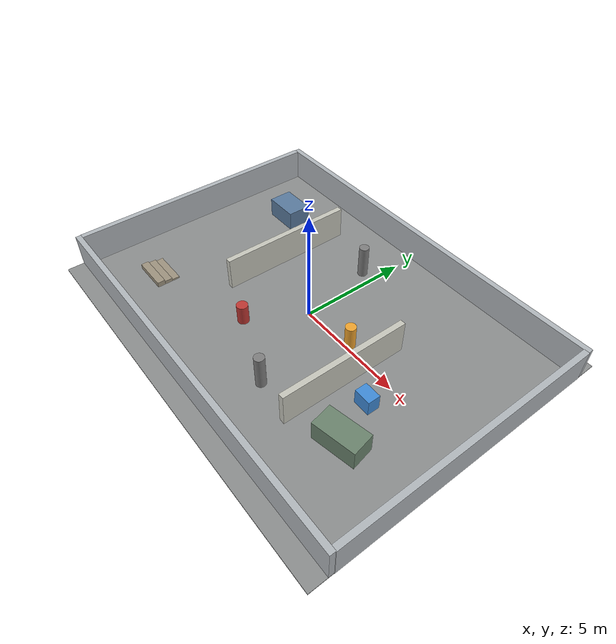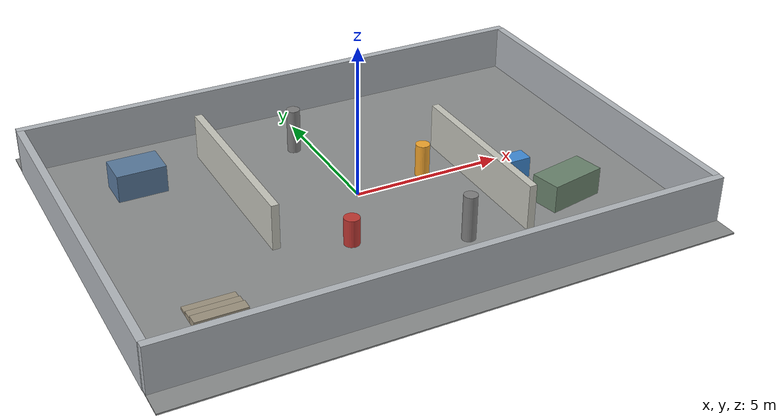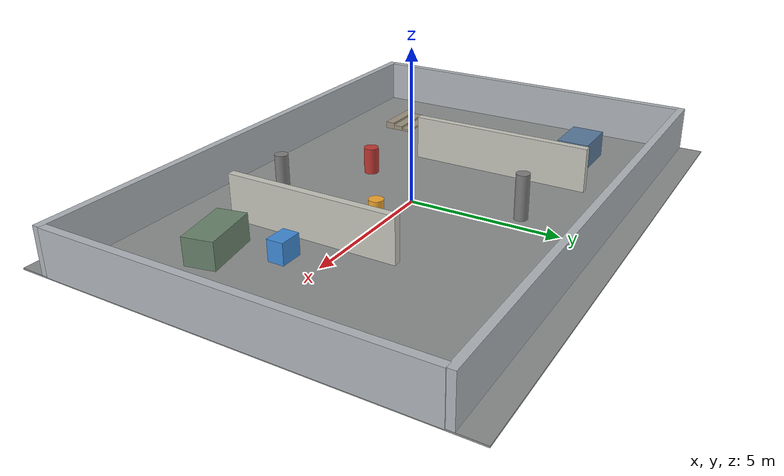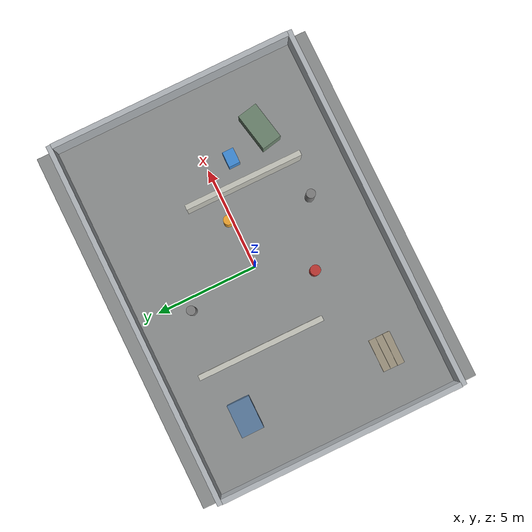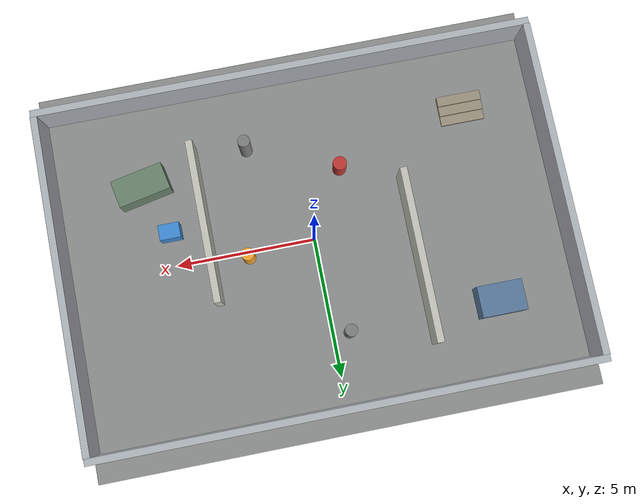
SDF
<?xml version="1.0"?>
<sdf version="1.6">
  <world name="official_bag_reference_factory">
    <!-- ==================== 太阳光源 ==================== -->
    <!-- 引入 Gazebo 标准模型库中的太阳（环境光 + 方向光），保证场景亮度。 -->
    <include>
      <uri>model://sun</uri>
    </include>

    <!-- ==================== ground：地面 ==================== -->
    <!-- 静态地面：18m × 14m × 0.05m 的薄长方体，中心下沉 -0.025m
         使顶面恰好位于 z=0 平面，供机器人行走。 -->
    <model name="ground">
      <static>true</static>
      <link name="ground_link">
        <collision name="collision">
          <geometry>
            <box>
              <size>18 14 0.05</size>
            </box>
          </geometry>
        </collision>
        <visual name="visual">
          <geometry>
            <box>
              <size>18 14 0.05</size>
            </box>
          </geometry>
          <material>
            <ambient>0.55 0.56 0.56 1</ambient>
            <diffuse>0.55 0.56 0.56 1</diffuse>
          </material>
        </visual>
      </link>
      <pose>0 0 -0.025 0 0 0</pose>
    </model>

    <!-- ==================== north_wall：北侧围墙 ==================== -->
    <!-- 静态墙体：位于 y=6.1m 处，尺寸 18m × 0.25m × 1.5m，作为场地北边界。 -->
    <model name="north_wall">
      <static>true</static>
      <pose>0 6.1 0.75 0 0 0</pose>
      <link name="link">
        <collision name="collision"><geometry><box><size>18 0.25 1.5</size></box></geometry></collision>
        <visual name="visual"><geometry><box><size>18 0.25 1.5</size></box></geometry><material><ambient>0.70 0.72 0.74 1</ambient><diffuse>0.70 0.72 0.74 1</diffuse></material></visual>
      </link>
    </model>

    <!-- ==================== south_wall：南侧围墙 ==================== -->
    <!-- 静态墙体：位于 y=-6.1m 处，作为场地南边界。 -->
    <model name="south_wall">
      <static>true</static>
      <pose>0 -6.1 0.75 0 0 0</pose>
      <link name="link">
        <collision name="collision"><geometry><box><size>18 0.25 1.5</size></box></geometry></collision>
        <visual name="visual"><geometry><box><size>18 0.25 1.5</size></box></geometry><material><ambient>0.70 0.72 0.74 1</ambient><diffuse>0.70 0.72 0.74 1</diffuse></material></visual>
      </link>
    </model>

    <!-- ==================== west_wall：西侧围墙 ==================== -->
    <!-- 静态墙体：位于 x=-8.9m 处，尺寸 0.25m × 12m × 1.5m，作为场地西边界。 -->
    <model name="west_wall">
      <static>true</static>
      <pose>-8.9 0 0.75 0 0 0</pose>
      <link name="link">
        <collision name="collision"><geometry><box><size>0.25 12 1.5</size></box></geometry></collision>
        <visual name="visual"><geometry><box><size>0.25 12 1.5</size></box></geometry><material><ambient>0.70 0.72 0.74 1</ambient><diffuse>0.70 0.72 0.74 1</diffuse></material></visual>
      </link>
    </model>

    <!-- ==================== east_wall：东侧围墙 ==================== -->
    <!-- 静态墙体：位于 x=8.9m 处，作为场地东边界。 -->
    <model name="east_wall">
      <static>true</static>
      <pose>8.9 0 0.75 0 0 0</pose>
      <link name="link">
        <collision name="collision"><geometry><box><size>0.25 12 1.5</size></box></geometry></collision>
        <visual name="visual"><geometry><box><size>0.25 12 1.5</size></box></geometry><material><ambient>0.70 0.72 0.74 1</ambient><diffuse>0.70 0.72 0.74 1</diffuse></material></visual>
      </link>
    </model>

    <!-- ==================== left_partition：左侧分区隔墙 ==================== -->
    <!-- 静态隔墙：位于 (-3.5, 1.4)，尺寸 0.25m × 6.2m × 1.5m，
         将场地西半区分成上下两块工作区。 -->
    <model name="left_partition">
      <static>true</static>
      <pose>-3.5 1.4 0.75 0 0 0</pose>
      <link name="link">
        <collision name="collision"><geometry><box><size>0.25 6.2 1.5</size></box></geometry></collision>
        <visual name="visual"><geometry><box><size>0.25 6.2 1.5</size></box></geometry><material><ambient>0.78 0.78 0.74 1</ambient><diffuse>0.78 0.78 0.74 1</diffuse></material></visual>
      </link>
    </model>

    <!-- ==================== right_partition：右侧分区隔墙 ==================== -->
    <!-- 静态隔墙：位于 (3.7, -1.2)，尺寸 0.25m × 5.8m × 1.5m，
         将场地东半区分成上下两块工作区。 -->
    <model name="right_partition">
      <static>true</static>
      <pose>3.7 -1.2 0.75 0 0 0</pose>
      <link name="link">
        <collision name="collision"><geometry><box><size>0.25 5.8 1.5</size></box></geometry></collision>
        <visual name="visual"><geometry><box><size>0.25 5.8 1.5</size></box></geometry><material><ambient>0.78 0.78 0.74 1</ambient><diffuse>0.78 0.78 0.74 1</diffuse></material></visual>
      </link>
    </model>

    <!-- ==================== workcell_block_a：工作单元方块 A ==================== -->
    <!-- 静态障碍物：位于 (-6.0, 3.4)，尺寸 1.6m × 1.1m × 0.9m，
         模拟车间工作台/设备块。 -->
    <model name="workcell_block_a">
      <static>true</static>
      <pose>-6.0 3.4 0.45 0 0 0</pose>
      <link name="link">
        <collision name="collision"><geometry><box><size>1.6 1.1 0.9</size></box></geometry></collision>
        <visual name="visual"><geometry><box><size>1.6 1.1 0.9</size></box></geometry><material><ambient>0.35 0.48 0.62 1</ambient><diffuse>0.35 0.48 0.62 1</diffuse></material></visual>
      </link>
    </model>

    <!-- ==================== workcell_block_b：工作单元方块 B ==================== -->
    <!-- 静态障碍物：位于 (5.7, -3.0)（带 0.2rad 偏航），
         尺寸 1.9m × 1.0m × 0.9m，模拟另一台设备块。 -->
    <model name="workcell_block_b">
      <static>true</static>
      <pose>5.7 -3.0 0.45 0 0 0.2</pose>
      <link name="link">
        <collision name="collision"><geometry><box><size>1.9 1.0 0.9</size></box></geometry></collision>
        <visual name="visual"><geometry><box><size>1.9 1.0 0.9</size></box></geometry><material><ambient>0.42 0.52 0.43 1</ambient><diffuse>0.42 0.52 0.43 1</diffuse></material></visual>
      </link>
    </model>

    <!-- ==================== pillar_1：立柱 1 ==================== -->
    <!-- 静态圆柱柱：位于 (-0.6, 3.5)，半径 0.22m、高 1.5m，
         模拟车间支撑柱（雷达/相机均可见的圆柱障碍）。 -->
    <model name="pillar_1">
      <static>true</static>
      <pose>-0.6 3.5 0.75 0 0 0</pose>
      <link name="link">
        <collision name="collision"><geometry><cylinder><radius>0.22</radius><length>1.5</length></cylinder></geometry></collision>
        <visual name="visual"><geometry><cylinder><radius>0.22</radius><length>1.5</length></cylinder></geometry><material><ambient>0.50 0.50 0.50 1</ambient><diffuse>0.50 0.50 0.50 1</diffuse></material></visual>
      </link>
    </model>

    <!-- ==================== pillar_2：立柱 2 ==================== -->
    <!-- 静态圆柱柱：位于 (1.8, -3.7)，参数与 pillar_1 相同。 -->
    <model name="pillar_2">
      <static>true</static>
      <pose>1.8 -3.7 0.75 0 0 0</pose>
      <link name="link">
        <collision name="collision"><geometry><cylinder><radius>0.22</radius><length>1.5</length></cylinder></geometry></collision>
        <visual name="visual"><geometry><cylinder><radius>0.22</radius><length>1.5</length></cylinder></geometry><material><ambient>0.50 0.50 0.50 1</ambient><diffuse>0.50 0.50 0.50 1</diffuse></material></visual>
      </link>
    </model>

    <!-- ==================== stair_step_1：台阶第 1 级 ==================== -->
    <!-- 静态台阶：位于 (-6.2, -3.4)，尺寸 1.6m × 0.35m × 0.08m，
         作为三级台阶的最底层（高度 0.08m）。 -->
    <model name="stair_step_1">
      <static>true</static>
      <pose>-6.2 -3.4 0.04 0 0 0</pose>
      <link name="link">
        <collision name="collision"><geometry><box><size>1.6 0.35 0.08</size></box></geometry></collision>
        <visual name="visual"><geometry><box><size>1.6 0.35 0.08</size></box></geometry><material><ambient>0.62 0.58 0.50 1</ambient><diffuse>0.62 0.58 0.50 1</diffuse></material></visual>
      </link>
    </model>

    <!-- ==================== stair_step_2：台阶第 2 级 ==================== -->
    <!-- 静态台阶：位于 (-6.2, -3.75)，尺寸 1.6m × 0.35m × 0.16m，
         高度 0.16m（第二级）。 -->
    <model name="stair_step_2">
      <static>true</static>
      <pose>-6.2 -3.75 0.08 0 0 0</pose>
      <link name="link">
        <collision name="collision"><geometry><box><size>1.6 0.35 0.16</size></box></geometry></collision>
        <visual name="visual"><geometry><box><size>1.6 0.35 0.16</size></box></geometry><material><ambient>0.62 0.58 0.50 1</ambient><diffuse>0.62 0.58 0.50 1</diffuse></material></visual>
      </link>
    </model>

    <!-- ==================== stair_step_3：台阶第 3 级 ==================== -->
    <!-- 静态台阶：位于 (-6.2, -4.1)，尺寸 1.6m × 0.35m × 0.24m，
         高度 0.24m（第三级，最高）。 -->
    <model name="stair_step_3">
      <static>true</static>
      <pose>-6.2 -4.1 0.12 0 0 0</pose>
      <link name="link">
        <collision name="collision"><geometry><box><size>1.6 0.35 0.24</size></box></geometry></collision>
        <visual name="visual"><geometry><box><size>1.6 0.35 0.24</size></box></geometry><material><ambient>0.62 0.58 0.50 1</ambient><diffuse>0.62 0.58 0.50 1</diffuse></material></visual>
      </link>
    </model>

    <!-- ==================== dynamic_worker：动态工人（圆柱） ==================== -->
    <model name="dynamic_worker">
      <static>false</static>
      <pose>2.4 0.2 0.55 0 0 0</pose>
      <link name="link">
        <gravity>false</gravity>
        <collision name="collision"><geometry><cylinder><radius>0.23</radius><length>1.1</length></cylinder></geometry></collision>
        <visual name="visual"><geometry><cylinder><radius>0.23</radius><length>1.1</length></cylinder></geometry><material><ambient>0.95 0.65 0.18 1</ambient><diffuse>0.95 0.65 0.18 1</diffuse></material></visual>
      </link>
      <!-- 正弦运动插件：沿 y 轴振幅 1.1m、周期 12s、初相 0，30Hz 更新。 -->
      <plugin name="sinusoidal_motion" filename="libm20_sinusoidal_obstacle_plugin.so">
        <axis>y</axis>
        <amplitude>1.1</amplitude>
        <period>12.0</period>
        <phase>0.0</phase>
        <update_rate>30.0</update_rate>
      </plugin>
    </model>

    <!-- ==================== dynamic_cart：动态推车（长方体） ==================== -->
    <!-- 非静态模型：蓝色长方体（0.75m × 0.55m × 0.70m），关闭重力，
         由正弦运动插件沿 x 轴做振幅 0.9m、周期 16s（初相 1.57）的
         往复运动，模拟移动中的物料车。 -->
    <model name="dynamic_cart">
      <static>false</static>
      <pose>5.0 -1.2 0.35 0 0 0</pose>
      <link name="link">
        <gravity>false</gravity>
        <collision name="collision"><geometry><box><size>0.75 0.55 0.70</size></box></geometry></collision>
        <visual name="visual"><geometry><box><size>0.75 0.55 0.70</size></box></geometry><material><ambient>0.25 0.55 0.85 1</ambient><diffuse>0.25 0.55 0.85 1</diffuse></material></visual>
      </link>
      <!-- 正弦运动插件：沿 x 轴振幅 0.9m、周期 16s、初相 1.57。 -->
      <plugin name="sinusoidal_motion" filename="libm20_sinusoidal_obstacle_plugin.so">
        <axis>x</axis>
        <amplitude>0.9</amplitude>
        <period>16.0</period>
        <phase>1.57</phase>
        <update_rate>30.0</update_rate>
      </plugin>
    </model>

    <!-- ==================== dynamic_barrel：动态油桶（圆柱） ==================== -->
    <!-- 非静态模型：红色圆柱（半径 0.25m、高 0.9m），关闭重力，
         由正弦运动插件沿 y 轴做振幅 0.7m、周期 14s（初相 3.14）的
         往复运动，模拟滚动/移动中的油桶障碍。 -->
    <model name="dynamic_barrel">
      <static>false</static>
      <pose>-1.4 -2.4 0.45 0 0 0</pose>
      <link name="link">
        <gravity>false</gravity>
        <collision name="collision"><geometry><cylinder><radius>0.25</radius><length>0.9</length></cylinder></geometry></collision>
        <visual name="visual"><geometry><cylinder><radius>0.25</radius><length>0.9</length></cylinder></geometry><material><ambient>0.75 0.22 0.20 1</ambient><diffuse>0.75 0.22 0.20 1</diffuse></material></visual>
      </link>
      <!-- 正弦运动插件：沿 y 轴振幅 0.7m、周期 14s、初相 3.14。 -->
      <plugin name="sinusoidal_motion" filename="libm20_sinusoidal_obstacle_plugin.so">
        <axis>y</axis>
        <amplitude>0.7</amplitude>
        <period>14.0</period>
        <phase>3.14</phase>
        <update_rate>30.0</update_rate>
      </plugin>
    </model>
  </world>
</sdf>
